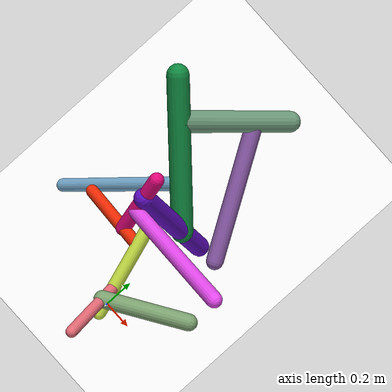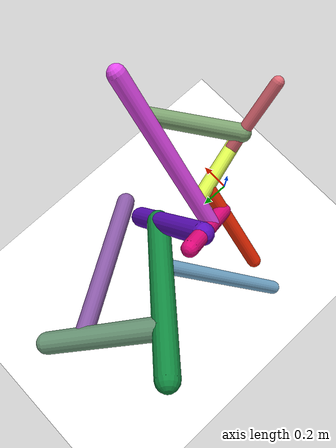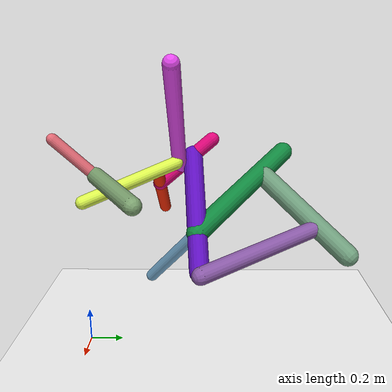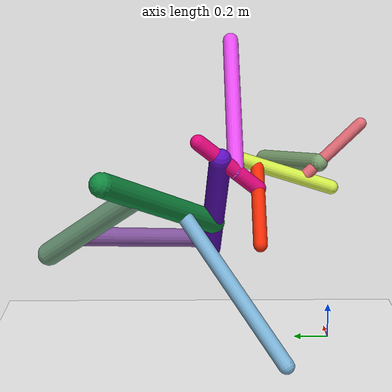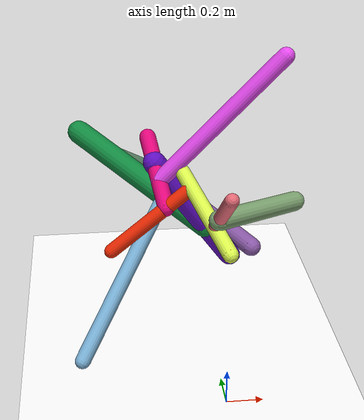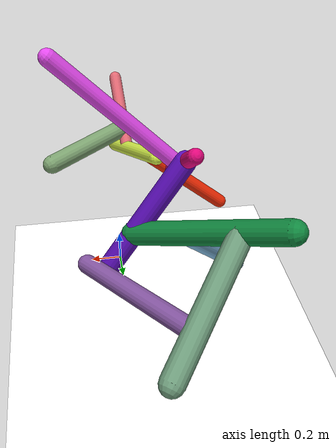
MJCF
<mujoco model="morphology">
  <option timestep="0.01"/>
  <default>
    <default class="/"/>
    <default class="0/"/>
    <default class="0/1/"/>
    <default class="0/1/2/"/>
    <default class="0/3/"/>
    <default class="0/3/4/"/>
    <default class="0/3/4/5/"/>
    <default class="0/3/4/6/"/>
    <default class="0/3/4/6/7/"/>
    <default class="0/3/4/6/7/8/"/>
    <default class="0/3/4/6/7/9/"/>
    <default class="0/3/4/6/7/9/10/"/>
  </default>
  <asset>
    <texture name="texplane" type="2d" builtin="checker" rgb1="0.10000000000000001 0.20000000000000001 0.29999999999999999" rgb2="0.20000000000000001 0.29999999999999999 0.40000000000000002" width="300" height="300"/>
    <material name="MatPlane" class="/" texture="texplane" texrepeat="20 20" specular="1" shininess="1" reflectance="0.5"/>
  </asset>
  <worldbody>
    <light name="//unnamed_light_0" class="/" directional="true" pos="0 0 1.5" dir="0 0 -1.3" cutoff="100" exponent="1" diffuse="1 1 1" specular="0.10000000000000001 0.10000000000000001 0.10000000000000001"/>
    <geom name="ground" class="/" type="plane" size="15 15 0.5" material="MatPlane" rgba="1 1 1 1"/>
    <site name="body" class="/" size="9.9999999999999995e-07 9.9999999999999995e-07 9.9999999999999995e-07" pos="0 0 0.91204539537429807"/>
    <body pos="0 0 0.91204539537429807" name="0/">
      <freejoint name="0/"/>
      <geom name="0/geom" class="0/" type="capsule" contype="1" conaffinity="1" condim="3" size="0.041357081089917716" rgba="0.85040811948444961 0.95907806507310089 0.30001002924702902 1" friction="0.59999999999999998 0.10000000000000001 0.10000000000000001" fromto="0 0 0 -0.17867525286782038 0.55335753308451929 0.20481021491017137"/>
      <site name="0/end0" class="0/" size="0.0050000000000000001" pos="-0.17867525286782038 0.55335753308451929 0.20481021491017137"/>
      <site name="0/attach1" class="0/" size="9.9999999999999995e-07 9.9999999999999995e-07 9.9999999999999995e-07" pos="-0.055975535708839057 0.17335632022774733 0.064163118922352144"/>
      <body pos="-0.055975535708839057 0.17335632022774733 0.064163118922352144" name="0/1/">
        <joint name="0/1/joint/" class="0/" type="hinge" axis="0 0 1" limited="true" range="-48.033349638348071 48.033349638348071"/>
        <geom name="0/1/geom" class="0/1/" type="capsule" contype="1" conaffinity="1" condim="3" size="0.035169915095539094" rgba="0.87991329984864641 0.40991515830852043 0.45509919121219344 1" friction="0.59999999999999998 0.10000000000000001 0.10000000000000001" fromto="0 0 0 0.028080034974832246 -0.32964896909889935 0.31143245702787592"/>
        <site name="0/1/end1" class="0/1/" size="0.0050000000000000001" pos="0.028080034974832246 -0.32964896909889935 0.31143245702787592"/>
        <site name="0/1/attach2" class="0/1/" size="9.9999999999999995e-07 9.9999999999999995e-07 9.9999999999999995e-07" pos="0.0080176457152874147 -0.094124122246058331 0.088922791831597375"/>
        <body pos="0.0080176457152874147 -0.094124122246058331 0.088922791831597375" name="0/1/2/">
          <geom name="0/1/2/geom" class="0/1/2/" type="capsule" contype="1" conaffinity="1" condim="3" size="0.052245122194362753" rgba="0.4840155061734388 0.62952195735678007 0.43619508679391539 1" friction="0.59999999999999998 0.10000000000000001 0.10000000000000001" fromto="0 0 0 0.4395711259212427 0.28072428104010738 -0.05545130789201913"/>
          <site name="0/1/2/end2" class="0/1/2/" size="0.0050000000000000001" pos="0.4395711259212427 0.28072428104010738 -0.05545130789201913"/>
        </body>
      </body>
      <site name="0/attach3" class="0/" size="9.9999999999999995e-07 9.9999999999999995e-07 9.9999999999999995e-07" pos="-0.14192539121032827 0.43954315497905694 0.1626849236726762"/>
      <body pos="-0.14192539121032827 0.43954315497905694 0.1626849236726762" name="0/3/">
        <joint name="0/3/joint/" class="0/" type="hinge" axis="0 0 1" limited="true" range="-53.276098303508036 53.276098303508036"/>
        <geom name="0/3/geom" class="0/3/" type="capsule" contype="1" conaffinity="1" condim="3" size="0.038726292444042604" rgba="0.9303088365671357 0.16535007738151797 0.017070234358923631 1" friction="0.59999999999999998 0.10000000000000001 0.10000000000000001" fromto="0 0 0 -0.43284950251247395 0.003936037289012817 -0.35740906455219262"/>
        <site name="0/3/end3" class="0/3/" size="0.0050000000000000001" pos="-0.43284950251247395 0.003936037289012817 -0.35740906455219262"/>
        <site name="0/3/attach4" class="0/3/" size="9.9999999999999995e-07 9.9999999999999995e-07 9.9999999999999995e-07" pos="-0.13519473413035887 0.0012293684334312737 -0.11163192559409597"/>
        <body pos="-0.13519473413035887 0.0012293684334312737 -0.11163192559409597" name="0/3/4/">
          <joint name="0/3/4/joint/" class="0/3/" type="hinge" axis="-5.5511151231257827e-17 0.99993936578128095 0.011012028011651694" limited="true" range="-33.359213544744108 33.359213544744108"/>
          <geom name="0/3/4/geom" class="0/3/4/" type="capsule" contype="1" conaffinity="1" condim="3" size="0.045133070672887417" rgba="0.87746159537577462 0.021525170823124329 0.47884571103211504 1" friction="0.59999999999999998 0.10000000000000001 0.10000000000000001" fromto="0 0 0 -0.069808445709903411 0.33298986972814171 0.27100684038513734"/>
          <site name="0/3/4/end4" class="0/3/4/" size="0.0050000000000000001" pos="-0.069808445709903411 0.33298986972814171 0.27100684038513734"/>
          <site name="0/3/4/attach5" class="0/3/4/" size="9.9999999999999995e-07 9.9999999999999995e-07 9.9999999999999995e-07" pos="-0.026174312426907768 0.12485281396292754 0.10161260056622917"/>
          <body pos="-0.026174312426907768 0.12485281396292754 0.10161260056622917" name="0/3/4/5/">
            <joint name="0/3/4/5/joint/" class="0/3/4/" type="hinge" axis="-0.98703751324507916 -0.12447547325613822 -0.10130549839288328" limited="true" range="-66.521047106373629 66.521047106373629"/>
            <geom name="0/3/4/5/geom" class="0/3/4/5/" type="capsule" contype="1" conaffinity="1" condim="3" size="0.045968494326471321" rgba="0.89399319704462754 0.28742224592357413 0.92852730583826493 1" friction="0.59999999999999998 0.10000000000000001 0.10000000000000001" fromto="0 0 0 0.65574453372879171 0.0080107998574684425 0.66353970956505925"/>
            <site name="0/3/4/5/end5" class="0/3/4/5/" size="0.0050000000000000001" pos="0.65574453372879171 0.0080107998574684425 0.66353970956505925"/>
          </body>
          <site name="0/3/4/attach6" class="0/3/4/" size="9.9999999999999995e-07 9.9999999999999995e-07 9.9999999999999995e-07" pos="-0.044173075714200663 0.21070783882925348 0.17148649504598074"/>
          <body pos="-0.044173075714200663 0.21070783882925348 0.17148649504598074" name="0/3/4/6/">
            <joint name="0/3/4/6/joint/" class="0/3/4/" type="hinge" axis="-0.98703751324507916 -0.12447547325613822 -0.10130549839288328" limited="true" range="-61.90073697147497 61.90073697147497"/>
            <geom name="0/3/4/6/geom" class="0/3/4/6/" type="capsule" contype="1" conaffinity="1" condim="3" size="0.061997984262840249" rgba="0.37242339626540044 0.057091497054942764 0.75300514585689715 1" friction="0.59999999999999998 0.10000000000000001 0.10000000000000001" fromto="0 0 0 0.43368376565952182 0.048085949099425873 -0.62150908824417184"/>
            <site name="0/3/4/6/end6" class="0/3/4/6/" size="0.0050000000000000001" pos="0.43368376565952182 0.048085949099425873 -0.62150908824417184"/>
            <site name="0/3/4/6/attach7" class="0/3/4/6/" size="9.9999999999999995e-07 9.9999999999999995e-07 9.9999999999999995e-07" pos="0.29389883808424505 0.0325868886214997 -0.42118431298893649"/>
            <body pos="0.29389883808424505 0.0325868886214997 -0.42118431298893649" name="0/3/4/6/7/">
              <joint name="0/3/4/6/7/joint/" class="0/3/4/6/" type="hinge" axis="-1.1102230246251565e-16 0.997020338258095 0.077139128201671181" limited="true" range="-69.832008044514083 69.832008044514083"/>
              <geom name="0/3/4/6/7/geom" class="0/3/4/6/7/" type="capsule" contype="1" conaffinity="1" condim="3" size="0.068171888092650568" rgba="0.064309854222842855 0.53094104739535208 0.24720933223370012 1" friction="0.59999999999999998 0.10000000000000001 0.10000000000000001" fromto="0 0 0 -0.6974306628235164 0.59184325557346096 0.36510368053745723"/>
              <site name="0/3/4/6/7/end7" class="0/3/4/6/7/" size="0.0050000000000000001" pos="-0.6974306628235164 0.59184325557346096 0.36510368053745723"/>
              <site name="0/3/4/6/7/attach8" class="0/3/4/6/7/" size="9.9999999999999995e-07 9.9999999999999995e-07 9.9999999999999995e-07" pos="-0.22014128905767147 0.18681303267418864 0.11524356349321382"/>
              <body pos="-0.22014128905767147 0.18681303267418864 0.11524356349321382" name="0/3/4/6/7/8/">
                <joint name="0/3/4/6/7/8/joint/" class="0/3/4/6/7/" type="hinge" axis="-0.70607437117100369 -0.60268534693967557 -0.37179208566035205" limited="true" range="-49.835592488141344 49.835592488141344"/>
                <geom name="0/3/4/6/7/8/geom" class="0/3/4/6/7/8/" type="capsule" contype="1" conaffinity="1" condim="3" size="0.044283131967820855" rgba="0.46795102049891313 0.68082507992642316 0.82230668813975316 1" friction="0.59999999999999998 0.10000000000000001 0.10000000000000001" fromto="0 0 0 -0.51411091669390396 -0.56135925444111423 -0.72864416521258502"/>
                <site name="0/3/4/6/7/8/end8" class="0/3/4/6/7/8/" size="0.0050000000000000001" pos="-0.51411091669390396 -0.56135925444111423 -0.72864416521258502"/>
              </body>
              <site name="0/3/4/6/7/attach9" class="0/3/4/6/7/" size="9.9999999999999995e-07 9.9999999999999995e-07 9.9999999999999995e-07" pos="-0.49674430990617635 0.42153978199386749 0.26004474064639438"/>
              <body pos="-0.49674430990617635 0.42153978199386749 0.26004474064639438" name="0/3/4/6/7/9/">
                <joint name="0/3/4/6/7/9/joint/" class="0/3/4/6/7/" type="hinge" axis="-0.70607437117100369 -0.60268534693967557 -0.37179208566035205" limited="true" range="-42.816077134342777 42.816077134342777"/>
                <geom name="0/3/4/6/7/9/geom" class="0/3/4/6/7/9/" type="capsule" contype="1" conaffinity="1" condim="3" size="0.067558063879591734" rgba="0.43064847212375934 0.60920290429642765 0.48334107182564301 1" friction="0.59999999999999998 0.10000000000000001 0.10000000000000001" fromto="0 0 0 0.43554289779221955 0.52556780959482774 -0.43324391687247621"/>
                <site name="0/3/4/6/7/9/end9" class="0/3/4/6/7/9/" size="0.0050000000000000001" pos="0.43554289779221955 0.52556780959482774 -0.43324391687247621"/>
                <site name="0/3/4/6/7/9/attach10" class="0/3/4/6/7/9/" size="9.9999999999999995e-07 9.9999999999999995e-07 9.9999999999999995e-07" pos="0.29436383141596961 0.35520761533583195 -0.29281005373914776"/>
                <body pos="0.29436383141596961 0.35520761533583195 -0.29281005373914776" name="0/3/4/6/7/9/10/">
                  <joint name="0/3/4/6/7/9/10/joint/" class="0/3/4/6/7/9/" type="hinge" axis="-0.84248062134770485 0.41569501816695237 -0.34267193425310211" limited="true" range="-35.054454171621401 35.054454171621401"/>
                  <geom name="0/3/4/6/7/9/10/geom" class="0/3/4/6/7/9/10/" type="capsule" contype="1" conaffinity="1" condim="3" size="0.054801412860034274" rgba="0.53510041271464914 0.34753222847768583 0.65019780175667918 1" friction="0.59999999999999998 0.10000000000000001 0.10000000000000001" fromto="0 0 0 0.47286538618123841 -0.74961637257615199 -0.1336294685083641"/>
                  <site name="0/3/4/6/7/9/10/end10" class="0/3/4/6/7/9/10/" size="0.0050000000000000001" pos="0.47286538618123841 -0.74961637257615199 -0.1336294685083641"/>
                </body>
              </body>
            </body>
          </body>
        </body>
      </body>
      <camera name="0/iso" class="0/" mode="trackcom" pos="-2.2999999999999998 -2.2999999999999998 1" xyaxes="0.45000000000000001 -0.45000000000000001 0 0.29999999999999999 0.14999999999999999 0.93999999999999995"/>
    </body>
  </worldbody>
  <actuator>
    <motor name="0/1/motor" class="0/1/" ctrllimited="true" ctrlrange="-1 1" gear="64" joint="0/1/joint/"/>
    <motor name="0/3/motor" class="0/3/" ctrllimited="true" ctrlrange="-1 1" gear="93" joint="0/3/joint/"/>
    <motor name="0/3/4/motor" class="0/3/4/" ctrllimited="true" ctrlrange="-1 1" gear="78" joint="0/3/4/joint/"/>
    <motor name="0/3/4/5/motor" class="0/3/4/5/" ctrllimited="true" ctrlrange="-1 1" gear="95" joint="0/3/4/5/joint/"/>
    <motor name="0/3/4/6/motor" class="0/3/4/6/" ctrllimited="true" ctrlrange="-1 1" gear="93" joint="0/3/4/6/joint/"/>
    <motor name="0/3/4/6/7/motor" class="0/3/4/6/7/" ctrllimited="true" ctrlrange="-1 1" gear="67" joint="0/3/4/6/7/joint/"/>
    <motor name="0/3/4/6/7/8/motor" class="0/3/4/6/7/8/" ctrllimited="true" ctrlrange="-1 1" gear="83" joint="0/3/4/6/7/8/joint/"/>
    <motor name="0/3/4/6/7/9/motor" class="0/3/4/6/7/9/" ctrllimited="true" ctrlrange="-1 1" gear="57" joint="0/3/4/6/7/9/joint/"/>
    <motor name="0/3/4/6/7/9/10/motor" class="0/3/4/6/7/9/10/" ctrllimited="true" ctrlrange="-1 1" gear="81" joint="0/3/4/6/7/9/10/joint/"/>
  </actuator>
  <sensor>
    <subtreelinvel name="velocity" body="0/"/>
  </sensor>
</mujoco>
